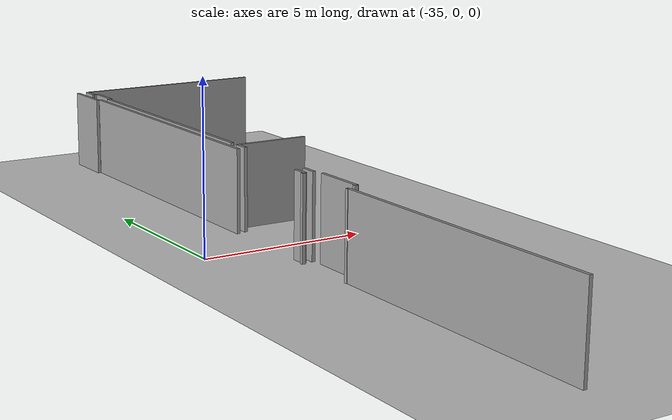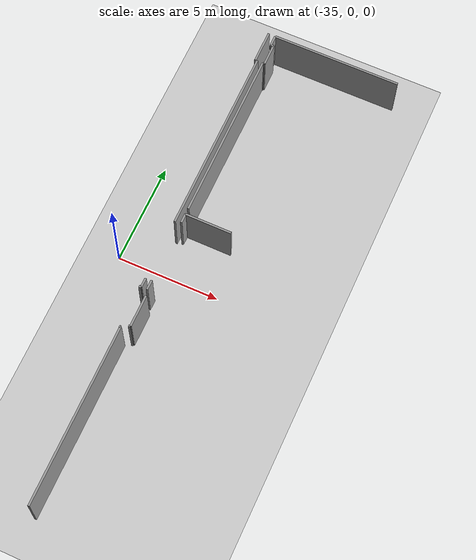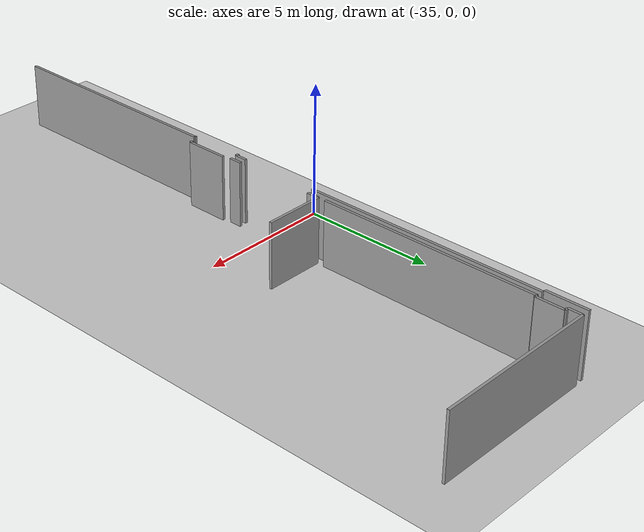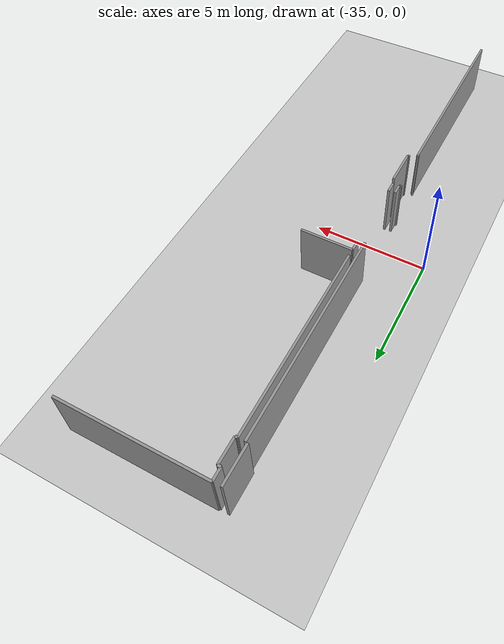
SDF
<sdf version="1.6">
 <world name="default">
  <model name="ground_plane">
   <static>1</static>
   <link name="link">
    <collision name="collision">
     <geometry><plane><normal>0 0 1</normal><size>100 100</size></plane></geometry>
     <surface><friction><ode><mu>100</mu><mu2>50</mu2></ode></friction></surface>
    </collision>
    <visual name="visual">
     <cast_shadows>0</cast_shadows>
     <geometry><plane><normal>0 0 1</normal><size>100 100</size></plane></geometry>
     <material>
      <script><uri>file://media/materials/scripts/gazebo.material</uri><name>Gazebo/Grey</name></script>
     </material>
    </visual>
   </link>
  </model>
  <model name="0510040942_A-40">
   <static>1</static>
   <link name="Wall_4">
    <collision name="Wall_4_Collision">
     <geometry><box><size>1.58506413591 0.1 2.5</size></box></geometry>
     <pose>0.792532067955 0 1.25 0 0 0</pose>
    </collision>
    <visual name="Wall_4_Visual">
     <pose>0.792532067955 0 1.25 0 0 0</pose>
     <geometry><box><size>1.58506413591 0.1 2.5</size></box></geometry>
     <material>
      <script><uri>file://media/materials/scripts/gazebo.material</uri><name>Gazebo/Grey</name></script>
      <ambient>1 1 1 1</ambient>
     </material>
    </visual>
    <pose>25.6435794308 -0.00380628544603 0 0 0 -1.57079632679</pose>
   </link>
   <link name="Wall_6">
    <collision name="Wall_6_Collision">
     <geometry><box><size>9.21387517921 0.1 2.5</size></box></geometry>
     <pose>4.60693758961 0 1.25 0 0 0</pose>
    </collision>
    <visual name="Wall_6_Visual">
     <pose>4.60693758961 0 1.25 0 0 0</pose>
     <geometry><box><size>9.21387517921 0.1 2.5</size></box></geometry>
     <material>
      <script><uri>file://media/materials/scripts/gazebo.material</uri><name>Gazebo/Grey</name></script>
      <ambient>1 1 1 1</ambient>
     </material>
    </visual>
    <pose>25.7478716521 -1.58887042136 0 0 0 -1.57079632679</pose>
   </link>
   <link name="Wall_7">
    <collision name="Wall_7_Collision">
     <geometry><box><size>0.460941167515 0.1 2.5</size></box></geometry>
     <pose>0.230470583757 0 1.25 0 0 0</pose>
    </collision>
    <visual name="Wall_7_Visual">
     <pose>0.230470583757 0 1.25 0 0 0</pose>
     <geometry><box><size>0.460941167515 0.1 2.5</size></box></geometry>
     <material>
      <script><uri>file://media/materials/scripts/gazebo.material</uri><name>Gazebo/Grey</name></script>
      <ambient>1 1 1 1</ambient>
     </material>
    </visual>
    <pose>25.7478716521 -13.8520877476 0 0 0 -1.57079632679</pose>
   </link>
   <link name="Wall_8">
    <collision name="Wall_8_Collision">
     <geometry><box><size>0.108225382849 0.1 2.5</size></box></geometry>
     <pose>0.0541126914244 0 1.25 0 0 0</pose>
    </collision>
    <visual name="Wall_8_Visual">
     <pose>0.0541126914244 0 1.25 0 0 0</pose>
     <geometry><box><size>0.108225382849 0.1 2.5</size></box></geometry>
     <material>
      <script><uri>file://media/materials/scripts/gazebo.material</uri><name>Gazebo/Grey</name></script>
      <ambient>1 1 1 1</ambient>
     </material>
    </visual>
    <pose>25.7478716521 -14.3130289151 0 0 0 3.14159265359</pose>
   </link>
   <link name="Wall_42">
    <collision name="Wall_42_Collision">
     <geometry><box><size>0.0671175000317 0.1 2.5</size></box></geometry>
     <pose>0.0335587500159 0 1.25 0 0 0</pose>
    </collision>
    <visual name="Wall_42_Visual">
     <pose>0.0335587500159 0 1.25 0 0 0</pose>
     <geometry><box><size>0.0671175000317 0.1 2.5</size></box></geometry>
     <material>
      <script><uri>file://media/materials/scripts/gazebo.material</uri><name>Gazebo/Grey</name></script>
      <ambient>1 1 1 1</ambient>
     </material>
    </visual>
    <pose>25.6751716 -16.3693111892 0 0 0 0.0</pose>
   </link>
   <link name="Wall_43">
    <collision name="Wall_43_Collision">
     <geometry><box><size>8.7611809635 0.1 2.5</size></box></geometry>
     <pose>4.38059048175 0 1.25 0 0 0</pose>
    </collision>
    <visual name="Wall_43_Visual">
     <pose>4.38059048175 0 1.25 0 0 0</pose>
     <geometry><box><size>8.7611809635 0.1 2.5</size></box></geometry>
     <material>
      <script><uri>file://media/materials/scripts/gazebo.material</uri><name>Gazebo/Grey</name></script>
      <ambient>1 1 1 1</ambient>
     </material>
    </visual>
    <pose>25.7422891001 -16.3693111892 0 0 0 -1.57079632679</pose>
   </link>
   <link name="Wall_53">
    <collision name="Wall_53_Collision">
     <geometry><box><size>8.37281297182 0.1 2.5</size></box></geometry>
     <pose>4.18640648591 0 1.25 0 0 0</pose>
    </collision>
    <visual name="Wall_53_Visual">
     <pose>4.18640648591 0 1.25 0 0 0</pose>
     <geometry><box><size>8.37281297182 0.1 2.5</size></box></geometry>
     <material>
      <script><uri>file://media/materials/scripts/gazebo.material</uri><name>Gazebo/Grey</name></script>
      <ambient>1 1 1 1</ambient>
     </material>
    </visual>
    <pose>26.030171156 -9.96878845934 0 0 0 1.57079632679</pose>
   </link>
   <link name="Wall_54">
    <collision name="Wall_54_Collision">
     <geometry><box><size>0.0895745841633 0.1 2.5</size></box></geometry>
     <pose>0.0447872920817 0 1.25 0 0 0</pose>
    </collision>
    <visual name="Wall_54_Visual">
     <pose>0.0447872920817 0 1.25 0 0 0</pose>
     <geometry><box><size>0.0895745841633 0.1 2.5</size></box></geometry>
     <material>
      <script><uri>file://media/materials/scripts/gazebo.material</uri><name>Gazebo/Grey</name></script>
      <ambient>1 1 1 1</ambient>
     </material>
    </visual>
    <pose>26.030171156 -1.59597548752 0 0 0 0.0</pose>
   </link>
   <link name="Wall_55">
    <collision name="Wall_55_Collision">
     <geometry><box><size>1.05979674436 0.1 2.5</size></box></geometry>
     <pose>0.529898372179 0 1.25 0 0 0</pose>
    </collision>
    <visual name="Wall_55_Visual">
     <pose>0.529898372179 0 1.25 0 0 0</pose>
     <geometry><box><size>1.05979674436 0.1 2.5</size></box></geometry>
     <material>
      <script><uri>file://media/materials/scripts/gazebo.material</uri><name>Gazebo/Grey</name></script>
      <ambient>1 1 1 1</ambient>
     </material>
    </visual>
    <pose>26.1197457401 -1.59597548752 0 0 0 1.57079632679</pose>
   </link>
   <link name="Wall_56">
    <collision name="Wall_56_Collision">
     <geometry><box><size>0.132458733522 0.1 2.5</size></box></geometry>
     <pose>0.066229366761 0 1.25 0 0 0</pose>
    </collision>
    <visual name="Wall_56_Visual">
     <pose>0.066229366761 0 1.25 0 0 0</pose>
     <geometry><box><size>0.132458733522 0.1 2.5</size></box></geometry>
     <material>
      <script><uri>file://media/materials/scripts/gazebo.material</uri><name>Gazebo/Grey</name></script>
      <ambient>1 1 1 1</ambient>
     </material>
    </visual>
    <pose>26.1197457401 -0.536178743165 0 0 0 3.14159265359</pose>
   </link>
   <link name="Wall_57">
    <collision name="Wall_57_Collision">
     <geometry><box><size>0.52260299174 0.1 2.5</size></box></geometry>
     <pose>0.26130149587 0 1.25 0 0 0</pose>
    </collision>
    <visual name="Wall_57_Visual">
     <pose>0.26130149587 0 1.25 0 0 0</pose>
     <geometry><box><size>0.52260299174 0.1 2.5</size></box></geometry>
     <material>
      <script><uri>file://media/materials/scripts/gazebo.material</uri><name>Gazebo/Grey</name></script>
      <ambient>1 1 1 1</ambient>
     </material>
    </visual>
    <pose>25.9872870066 -0.536178743165 0 0 0 1.57079632679</pose>
   </link>
   <link name="Wall_58">
    <collision name="Wall_58_Collision">
     <geometry><box><size>6.29280485175 0.1 2.5</size></box></geometry>
     <pose>3.14640242587 0 1.25 0 0 0</pose>
    </collision>
    <visual name="Wall_58_Visual">
     <pose>3.14640242587 0 1.25 0 0 0</pose>
     <geometry><box><size>6.29280485175 0.1 2.5</size></box></geometry>
     <material>
      <script><uri>file://media/materials/scripts/gazebo.material</uri><name>Gazebo/Grey</name></script>
      <ambient>1 1 1 1</ambient>
     </material>
    </visual>
    <pose>25.9872870066 -0.0135757514242 0 0 0 0.0</pose>
   </link>
   <link name="Wall_85">
    <collision name="Wall_85_Collision">
     <geometry><box><size>0.481368232742 0.1 2.5</size></box></geometry>
     <pose>0.240684116371 0 1.25 0 0 0</pose>
    </collision>
    <visual name="Wall_85_Visual">
     <pose>0.240684116371 0 1.25 0 0 0</pose>
     <geometry><box><size>0.481368232742 0.1 2.5</size></box></geometry>
     <material>
      <script><uri>file://media/materials/scripts/gazebo.material</uri><name>Gazebo/Grey</name></script>
      <ambient>1 1 1 1</ambient>
     </material>
    </visual>
    <pose>26.0333430605 -14.3104913915 0 0 0 1.57079632679</pose>
   </link>
   <link name="Wall_86">
    <collision name="Wall_86_Collision">
     <geometry><box><size>0.46056053897 0.1 2.5</size></box></geometry>
     <pose>0.230280269485 0 1.25 0 0 0</pose>
    </collision>
    <visual name="Wall_86_Visual">
     <pose>0.230280269485 0 1.25 0 0 0</pose>
     <geometry><box><size>0.46056053897 0.1 2.5</size></box></geometry>
     <material>
      <script><uri>file://media/materials/scripts/gazebo.material</uri><name>Gazebo/Grey</name></script>
      <ambient>1 1 1 1</ambient>
     </material>
    </visual>
    <pose>26.0333430605 -10.7267467678 0 0 0 1.57079632679</pose>
   </link>
   <link name="Wall_87">
    <collision name="Wall_87_Collision">
     <geometry><box><size>2.27044926856 0.1 2.5</size></box></geometry>
     <pose>1.13522463428 0 1.25 0 0 0</pose>
    </collision>
    <visual name="Wall_87_Visual">
     <pose>1.13522463428 0 1.25 0 0 0</pose>
     <geometry><box><size>2.27044926856 0.1 2.5</size></box></geometry>
     <material>
      <script><uri>file://media/materials/scripts/gazebo.material</uri><name>Gazebo/Grey</name></script>
      <ambient>1 1 1 1</ambient>
     </material>
    </visual>
    <pose>26.0333430605 -10.2661862289 0 0 0 0.0</pose>
   </link>
   <link name="Wall_93">
    <collision name="Wall_93_Collision">
     <geometry><box><size>0.0946496314247 0.1 2.5</size></box></geometry>
     <pose>0.0473248157123 0 1.25 0 0 0</pose>
    </collision>
    <visual name="Wall_93_Visual">
     <pose>0.0473248157123 0 1.25 0 0 0</pose>
     <geometry><box><size>0.0946496314247 0.1 2.5</size></box></geometry>
     <material>
      <script><uri>file://media/materials/scripts/gazebo.material</uri><name>Gazebo/Grey</name></script>
      <ambient>1 1 1 1</ambient>
     </material>
    </visual>
    <pose>26.0314399178 -16.1737949935 0 0 0 0.0</pose>
   </link>
   <link name="Wall_94">
    <collision name="Wall_94_Collision">
     <geometry><box><size>1.59394546862 0.1 2.5</size></box></geometry>
     <pose>0.796972734309 0 1.25 0 0 0</pose>
    </collision>
    <visual name="Wall_94_Visual">
     <pose>0.796972734309 0 1.25 0 0 0</pose>
     <geometry><box><size>1.59394546862 0.1 2.5</size></box></geometry>
     <material>
      <script><uri>file://media/materials/scripts/gazebo.material</uri><name>Gazebo/Grey</name></script>
      <ambient>1 1 1 1</ambient>
     </material>
    </visual>
    <pose>26.1260895492 -16.1737949935 0 0 0 1.57079632679</pose>
   </link>
   <pose>-58.65 12.576975145 0 0 0 0</pose>
  </model>
 </world>
</sdf>
